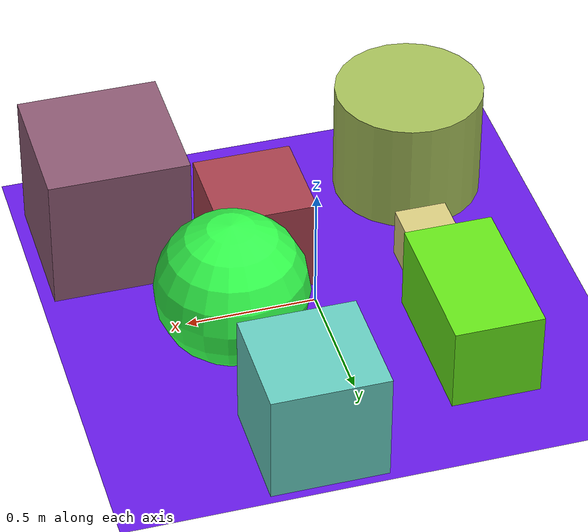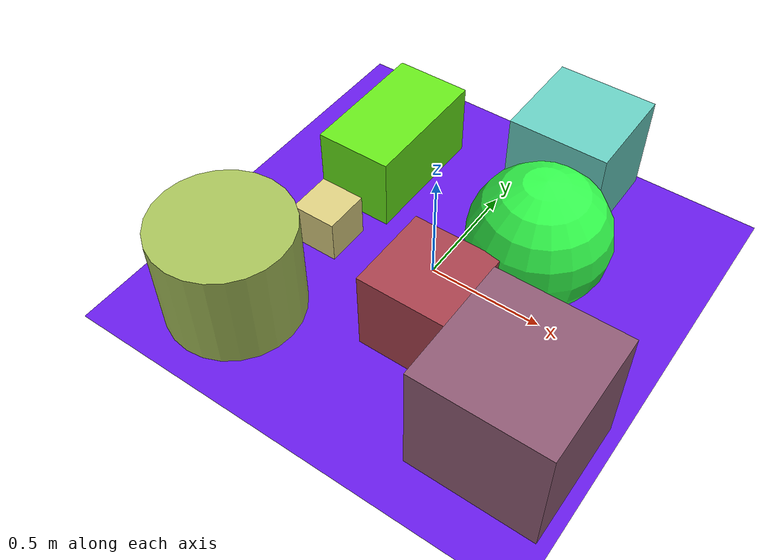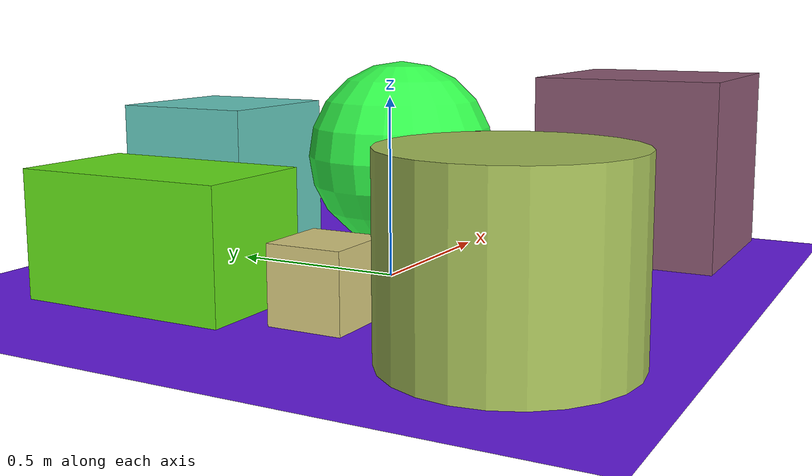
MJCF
<mujoco>
   <asset>
<texture type="skybox" builtin="gradient" rgb1="0.3 0.5 0.8" rgb2="0.0 0.0 0.5" width="256" height="256"/>
<texture name="checker_0" builtin="checker" type="2d" rgb1="0.6 0.8 0.4" rgb2="0.7 0.7 0.3" width="200" height="200"/>
<texture name="flat_1" builtin="flat" rgb1="0.2 1.0 0.3" rgb2="0.2 1.0 0.3"  width="200" height="200"/>
<texture name="flat_2" builtin="flat" rgb1="0.4 0.9 0.1" rgb2="0.4 0.9 0.1"  width="200" height="200"/>
<texture name="gradient_3" builtin="gradient" rgb1="1.0 0.4 0.3" rgb2="0.1 0.3 0.6" width="200" height="200"/>
<texture name="gradient_4" builtin="gradient" rgb1="0.1 0.8 0.9" rgb2="0.7 0.8 0.6" width="200" height="200"/>
<texture name="checker_5" builtin="checker" type="2d" rgb1="0.7 0.9 0.6" rgb2="1.0 0.7 0.4" width="200" height="200"/>
<texture name="gradient_6" builtin="gradient" rgb1="0.7 0.3 0.4" rgb2="0.6 0.2 0.2" width="200" height="200"/><material name="checker_0_mat" reflectance="0" texrepeat="4 4" texture="checker_0" texuniform="false" />
<material name="flat_1_mat" reflectance="0" texture="flat_1" texuniform="true"/>
<material name="flat_2_mat" reflectance="0" texture="flat_2" texuniform="true"/>
<material name="gradient_3_mat" reflectance="0" texture="gradient_3" texuniform="true"/>
<material name="gradient_4_mat" reflectance="0" texture="gradient_4" texuniform="true"/>
<material name="checker_5_mat" reflectance="0" texrepeat="3 3" texture="checker_5" texuniform="false" />
<material name="gradient_6_mat" reflectance="0" texture="gradient_6" texuniform="true"/>
   </asset>

   <worldbody>
      <light diffuse=".9 .9 .9" pos="0 0 3" dir="0 0 -1"/>
     <geom type="plane" size="1 1 0.1" rgba="0.4 0.1 0.9 1"/>
<geom type="cylinder" pos="-0.55 -0.6 0.23" size="0.29 0.23 0.23" material="checker_0_mat" />
<geom type="sphere" pos="0.37 0.17 0.29" size="0.29 0.29 0.29" material="flat_1_mat" />
<geom type="box" pos="-0.48 0.4 0.17" size="0.17 0.3 0.17" material="flat_2_mat" />
<geom type="box" pos="0.68 -0.53 0.27" size="0.27 0.27 0.27" material="gradient_3_mat" />
<geom type="box" pos="0.23 0.75 0.22" size="0.22 0.22 0.22" material="gradient_4_mat" />
<geom type="box" pos="-0.47 -0.09 0.1" size="0.1 0.1 0.1" material="checker_5_mat" />
<geom type="box" pos="0.16 -0.28 0.19" size="0.19 0.19 0.19" material="gradient_6_mat" /><camera euler="60 0 180" fovy="60" name="camera_a" pos="0 -1.5 1"></camera>   </worldbody>
</mujoco>
